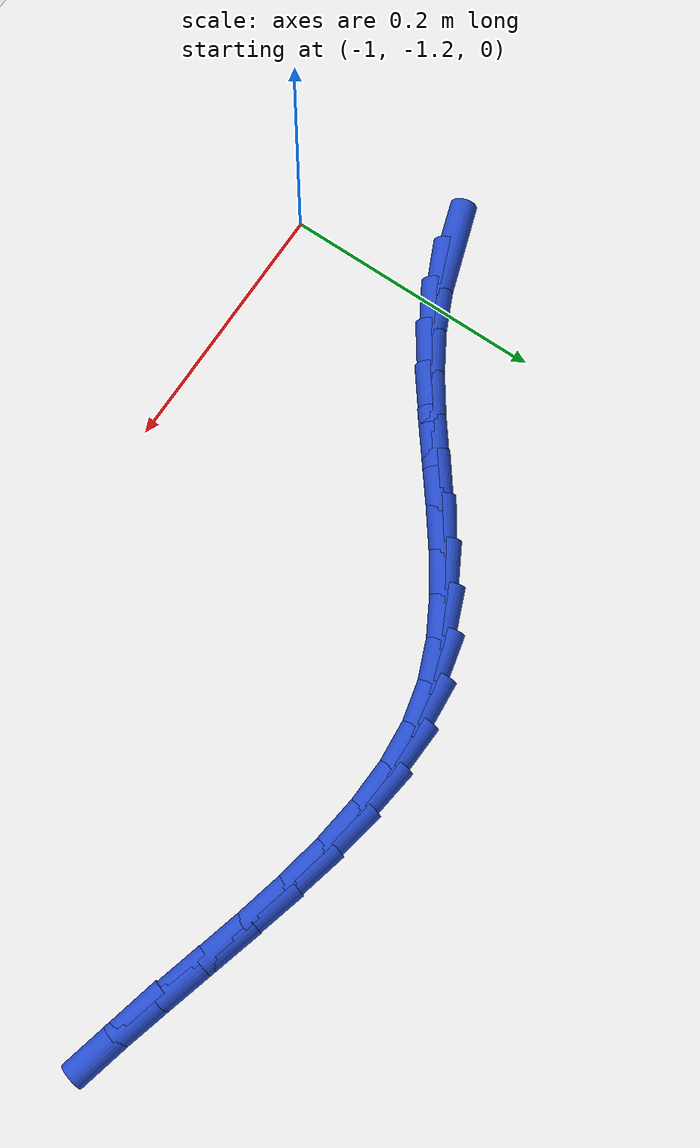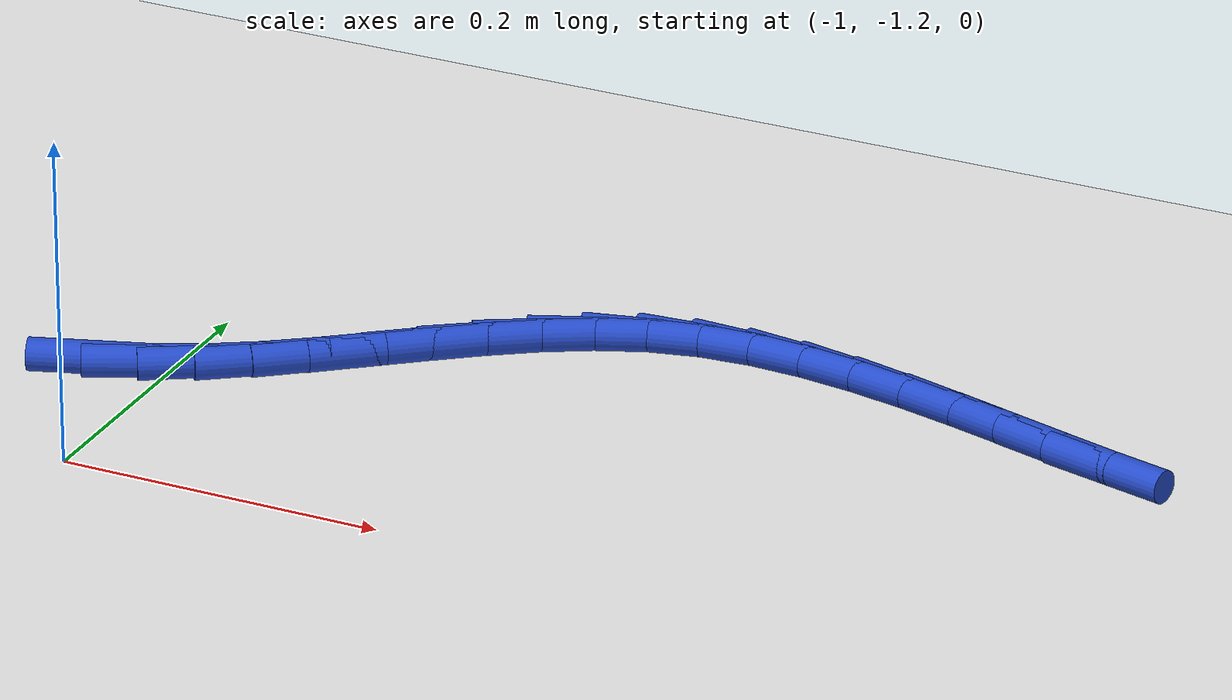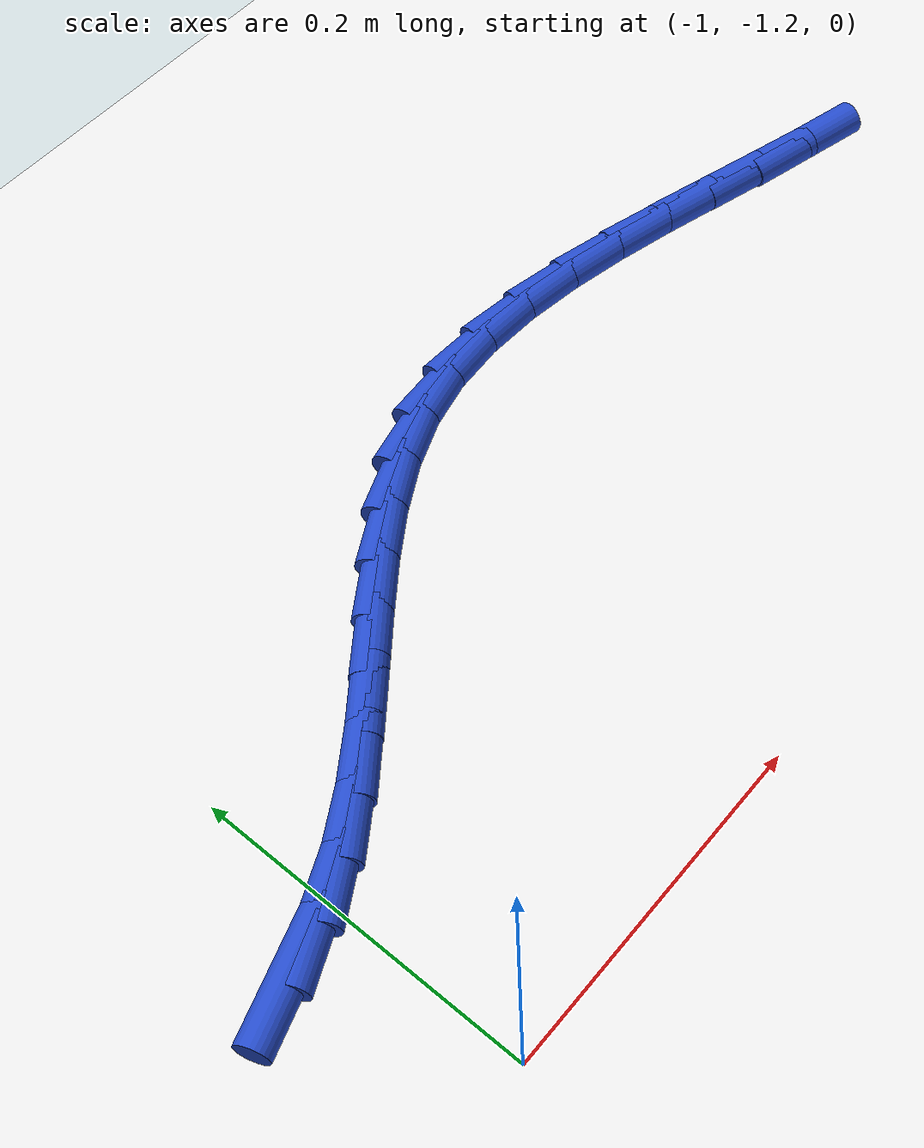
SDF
<sdf version="1.6">
 <world name="default">
  <model name="ground_plane">
   <static>1</static>
   <link name="link">
    <collision name="collision">
     <geometry><plane><normal>0 0 1</normal><size>100 100</size></plane></geometry>
     <surface><friction><ode><mu>100</mu><mu2>50</mu2></ode></friction></surface>
    </collision>
    <visual name="visual">
     <cast_shadows>0</cast_shadows>
     <geometry><plane><normal>0 0 1</normal><size>100 100</size></plane></geometry>
     <material>
      <script><uri>file://media/materials/scripts/gazebo.material</uri><name>Gazebo/WhiteGlow</name></script>
     </material>
    </visual>
   </link>
  </model>
  <model name="line">
   <link name="link_184">
    <pose>-1.0385406493853642 -1.0920091535455612 0.01 0 1.57 0.3212704610895867</pose>
    <collision name="collision">
     <geometry><cylinder><radius>0.01</radius><length>0.08</length></cylinder></geometry>
    </collision>
    <visual name="visual">
     <material>
      <script><name>Gazebo/Blue</name><uri>file://media/materials/scripts/gazebo.material</uri></script>
     </material>
     <geometry><cylinder><radius>0.01</radius><length>0.08</length></cylinder></geometry>
    </visual>
   </link>
   <link name="link_185">
    <pose>-1.0078438602594122 -1.081793262688118 0.01 0 1.57 0.43108420492839933</pose>
    <collision name="collision">
     <geometry><cylinder><radius>0.01</radius><length>0.08</length></cylinder></geometry>
    </collision>
    <visual name="visual">
     <material>
      <script><name>Gazebo/Blue</name><uri>file://media/materials/scripts/gazebo.material</uri></script>
     </material>
     <geometry><cylinder><radius>0.01</radius><length>0.08</length></cylinder></geometry>
    </visual>
   </link>
   <link name="link_186">
    <pose>-0.9784332784498596 -1.0682663383277455 0.01 0 1.57 0.5372127897535752</pose>
    <collision name="collision">
     <geometry><cylinder><radius>0.01</radius><length>0.08</length></cylinder></geometry>
    </collision>
    <visual name="visual">
     <material>
      <script><name>Gazebo/Blue</name><uri>file://media/materials/scripts/gazebo.material</uri></script>
     </material>
     <geometry><cylinder><radius>0.01</radius><length>0.08</length></cylinder></geometry>
    </visual>
   </link>
   <link name="link_187">
    <pose>-0.9503218913937264 -1.051521868394705 0.01 0 1.57 0.6110308520760165</pose>
    <collision name="collision">
     <geometry><cylinder><radius>0.01</radius><length>0.08</length></cylinder></geometry>
    </collision>
    <visual name="visual">
     <material>
      <script><name>Gazebo/Blue</name><uri>file://media/materials/scripts/gazebo.material</uri></script>
     </material>
     <geometry><cylinder><radius>0.01</radius><length>0.08</length></cylinder></geometry>
    </visual>
   </link>
   <link name="link_188">
    <pose>-0.9231613640084189 -1.0324971580342865 0.01 0 1.57 0.6524253614757131</pose>
    <collision name="collision">
     <geometry><cylinder><radius>0.01</radius><length>0.08</length></cylinder></geometry>
    </collision>
    <visual name="visual">
     <material>
      <script><name>Gazebo/Blue</name><uri>file://media/materials/scripts/gazebo.material</uri></script>
     </material>
     <geometry><cylinder><radius>0.01</radius><length>0.08</length></cylinder></geometry>
    </visual>
   </link>
   <link name="link_189">
    <pose>-0.8965787404256748 -1.0121870107254511 0.01 0 1.57 0.6630433977656872</pose>
    <collision name="collision">
     <geometry><cylinder><radius>0.01</radius><length>0.08</length></cylinder></geometry>
    </collision>
    <visual name="visual">
     <material>
      <script><name>Gazebo/Blue</name><uri>file://media/materials/scripts/gazebo.material</uri></script>
     </material>
     <geometry><cylinder><radius>0.01</radius><length>0.08</length></cylinder></geometry>
    </visual>
   </link>
   <link name="link_190">
    <pose>-0.8702010647772312 -0.9915862299471577 0.01 0 1.57 0.6431960090922926</pose>
    <collision name="collision">
     <geometry><cylinder><radius>0.01</radius><length>0.08</length></cylinder></geometry>
    </collision>
    <visual name="visual">
     <material>
      <script><name>Gazebo/Blue</name><uri>file://media/materials/scripts/gazebo.material</uri></script>
     </material>
     <geometry><cylinder><radius>0.01</radius><length>0.08</length></cylinder></geometry>
    </visual>
   </link>
   <link name="link_191">
    <pose>-0.8436553811948261 -0.9716896191783673 0.01 0 1.57 0.5915690862271348</pose>
    <collision name="collision">
     <geometry><cylinder><radius>0.01</radius><length>0.08</length></cylinder></geometry>
    </collision>
    <visual name="visual">
     <material>
      <script><name>Gazebo/Blue</name><uri>file://media/materials/scripts/gazebo.material</uri></script>
     </material>
     <geometry><cylinder><radius>0.01</radius><length>0.08</length></cylinder></geometry>
    </visual>
   </link>
   <link name="link_192">
    <pose>-0.8165687338101959 -0.9534919818980395 0.01 0 1.57 0.5056779961161422</pose>
    <collision name="collision">
     <geometry><cylinder><radius>0.01</radius><length>0.08</length></cylinder></geometry>
    </collision>
    <visual name="visual">
     <material>
      <script><name>Gazebo/Blue</name><uri>file://media/materials/scripts/gazebo.material</uri></script>
     </material>
     <geometry><cylinder><radius>0.01</radius><length>0.08</length></cylinder></geometry>
    </visual>
   </link>
   <link name="link_193">
    <pose>-0.7885681667550795 -0.9379881215851351 0.01 0 1.57 0.3834552761493702</pose>
    <collision name="collision">
     <geometry><cylinder><radius>0.01</radius><length>0.08</length></cylinder></geometry>
    </collision>
    <visual name="visual">
     <material>
      <script><name>Gazebo/Blue</name><uri>file://media/materials/scripts/gazebo.material</uri></script>
     </material>
     <geometry><cylinder><radius>0.01</radius><length>0.08</length></cylinder></geometry>
    </visual>
   </link>
   <link name="link_194">
    <pose>-0.7592807241612137 -0.9261728417186145 0.01 0 1.57 0.22804479702537658</pose>
    <collision name="collision">
     <geometry><cylinder><radius>0.01</radius><length>0.08</length></cylinder></geometry>
    </collision>
    <visual name="visual">
     <material>
      <script><name>Gazebo/Blue</name><uri>file://media/materials/scripts/gazebo.material</uri></script>
     </material>
     <geometry><cylinder><radius>0.01</radius><length>0.08</length></cylinder></geometry>
    </visual>
   </link>
   <link name="link_195">
    <pose>-0.7283525528614835 -0.9189949726455422 0.01 0 1.57 0.07577997622300384</pose>
    <collision name="collision">
     <geometry><cylinder><radius>0.01</radius><length>0.08</length></cylinder></geometry>
    </collision>
    <visual name="visual">
     <material>
      <script><name>Gazebo/Blue</name><uri>file://media/materials/scripts/gazebo.material</uri></script>
     </material>
     <geometry><cylinder><radius>0.01</radius><length>0.08</length></cylinder></geometry>
    </visual>
   </link>
   <link name="link_196">
    <pose>-0.6957955696831964 -0.9165230717051835 0.01 0 1.57 -0.04460856406281984</pose>
    <collision name="collision">
     <geometry><cylinder><radius>0.01</radius><length>0.08</length></cylinder></geometry>
    </collision>
    <visual name="visual">
     <material>
      <script><name>Gazebo/Blue</name><uri>file://media/materials/scripts/gazebo.material</uri></script>
     </material>
     <geometry><cylinder><radius>0.01</radius><length>0.08</length></cylinder></geometry>
    </visual>
   </link>
   <link name="link_197">
    <pose>-0.6619507209339374 -0.9180338440491534 0.01 0 1.57 -0.13550488747161674</pose>
    <collision name="collision">
     <geometry><cylinder><radius>0.01</radius><length>0.08</length></cylinder></geometry>
    </collision>
    <visual name="visual">
     <material>
      <script><name>Gazebo/Blue</name><uri>file://media/materials/scripts/gazebo.material</uri></script>
     </material>
     <geometry><cylinder><radius>0.01</radius><length>0.08</length></cylinder></geometry>
    </visual>
   </link>
   <link name="link_198">
    <pose>-0.6271706816976887 -0.9227757680050124 0.01 0 1.57 -0.20144486291198713</pose>
    <collision name="collision">
     <geometry><cylinder><radius>0.01</radius><length>0.08</length></cylinder></geometry>
    </collision>
    <visual name="visual">
     <material>
      <script><name>Gazebo/Blue</name><uri>file://media/materials/scripts/gazebo.material</uri></script>
     </material>
     <geometry><cylinder><radius>0.01</radius><length>0.08</length></cylinder></geometry>
    </visual>
   </link>
   <link name="link_199">
    <pose>-0.5918081270584323 -0.9299973219003215 0.01 0 1.57 -0.24634169905373307</pose>
    <collision name="collision">
     <geometry><cylinder><radius>0.01</radius><length>0.08</length></cylinder></geometry>
    </collision>
    <visual name="visual">
     <material>
      <script><name>Gazebo/Blue</name><uri>file://media/materials/scripts/gazebo.material</uri></script>
     </material>
     <geometry><cylinder><radius>0.01</radius><length>0.08</length></cylinder></geometry>
    </visual>
   </link>
   <link name="link_200">
    <pose>-0.5562157321001495 -0.9389469840626414 0.01 0 1.57 -0.2728720169111166</pose>
    <collision name="collision">
     <geometry><cylinder><radius>0.01</radius><length>0.08</length></cylinder></geometry>
    </collision>
    <visual name="visual">
     <material>
      <script><name>Gazebo/Blue</name><uri>file://media/materials/scripts/gazebo.material</uri></script>
     </material>
     <geometry><cylinder><radius>0.01</radius><length>0.08</length></cylinder></geometry>
    </visual>
   </link>
   <link name="link_201">
    <pose>-0.520746171906824 -0.9488732328195326 0.01 0 1.57 -0.2823375285935257</pose>
    <collision name="collision">
     <geometry><cylinder><radius>0.01</radius><length>0.08</length></cylinder></geometry>
    </collision>
    <visual name="visual">
     <material>
      <script><name>Gazebo/Blue</name><uri>file://media/materials/scripts/gazebo.material</uri></script>
     </material>
     <geometry><cylinder><radius>0.01</radius><length>0.08</length></cylinder></geometry>
    </visual>
   </link>
   <link name="link_202">
    <pose>-0.48575212156243747 -0.9590245464985562 0.01 0 1.57 -0.27459343603961045</pose>
    <collision name="collision">
     <geometry><cylinder><radius>0.01</radius><length>0.08</length></cylinder></geometry>
    </collision>
    <visual name="visual">
     <material>
      <script><name>Gazebo/Blue</name><uri>file://media/materials/scripts/gazebo.material</uri></script>
     </material>
     <geometry><cylinder><radius>0.01</radius><length>0.08</length></cylinder></geometry>
    </visual>
   </link>
   <link name="link_203">
    <pose>-0.45158625615097187 -0.9686494034272726 0.01 0 1.57 -0.247847837116534</pose>
    <collision name="collision">
     <geometry><cylinder><radius>0.01</radius><length>0.08</length></cylinder></geometry>
    </collision>
    <visual name="visual">
     <material>
      <script><name>Gazebo/Blue</name><uri>file://media/materials/scripts/gazebo.material</uri></script>
     </material>
     <geometry><cylinder><radius>0.01</radius><length>0.08</length></cylinder></geometry>
    </visual>
   </link>
  </model>
 </world>
</sdf>
